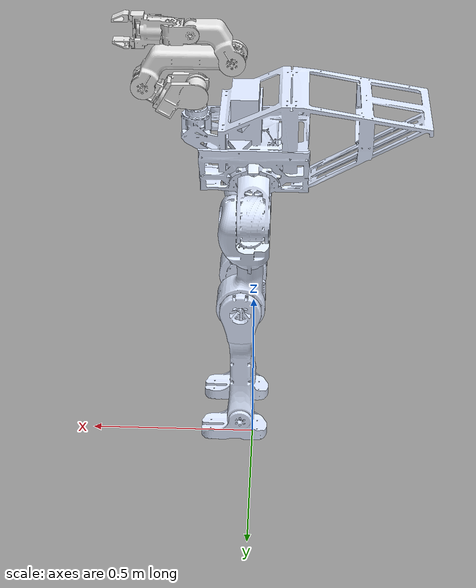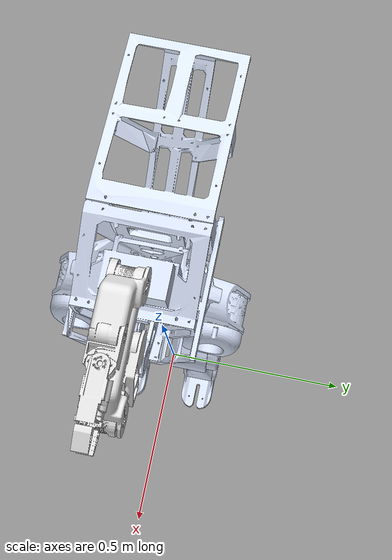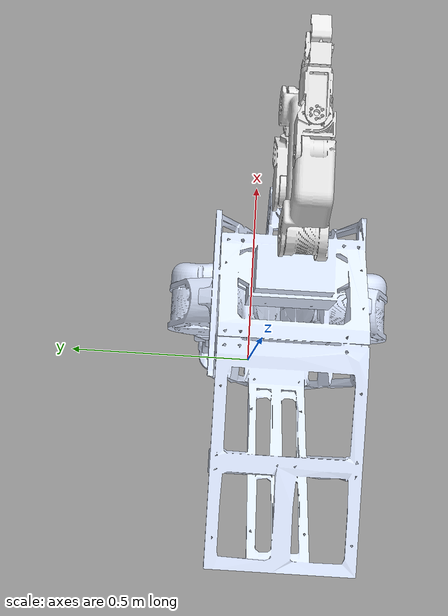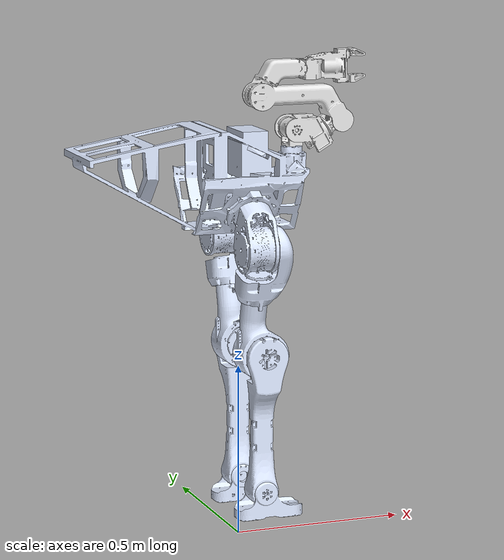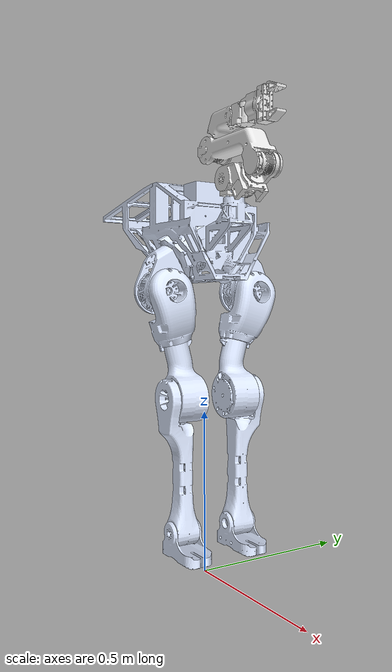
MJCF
<mujoco model="ostrich_0827">
  <compiler angle="radian" autolimits="true" meshdir="../meshes/"/>
  <default>
    <default class="EC_A10020">
      <joint armature="0.277" frictionloss="0.0"/>
    </default>
    <default class="EC_A6408">
      <joint armature="0.058" frictionloss="0.0"/>
    </default>
    <default class="EC_A4310">
      <joint armature="0.024" frictionloss="0.0"/>
    </default>

    <default class="ostrich">
      <default class="visual">
        <geom group="2" type="mesh" density="0" material="" contype="0" conaffinity="0"/>
      </default>
      <default class="collision">
        <geom group="3" rgba=".2 .6 .2 .3" type="capsule" contype="1" conaffinity="1"/>
        <default class="foot_capsule">
          <geom type="capsule" size="0.01"/>
        </default>
        <default class="foot_capsule2">
          <geom type="capsule" size="0.004"/>
        </default>
      </default>
      <site group="5" rgba="1 0 0 1"/>
    </default>

    <geom friction="0.8 0.005 0.0001" solref="0.02 1" solimp="0.9 0.95 0.001"/>
  </default>

  <asset>
    <mesh name="torso_link" content_type="model/stl" file="../meshes/torso_link.STL"/>
    <mesh name="left_hip_pitch_link" content_type="model/stl" file="../meshes/left_hip_pitch_link.STL"/>
    <mesh name="left_hip_roll_link" content_type="model/stl" file="../meshes/left_hip_roll_link.STL"/>
    <mesh name="left_hip_yaw_link" content_type="model/stl" file="../meshes/left_hip_yaw_link.STL"/>
    <mesh name="left_shank_link" content_type="model/stl" file="../meshes/left_knee_link.STL"/>
    <mesh name="left_foot_link" content_type="model/stl" file="../meshes/left_ankle_link.STL"/>
    <mesh name="right_hip_pitch_link" content_type="model/stl" file="../meshes/right_hip_pitch_link.STL"/>
    <mesh name="right_hip_roll_link" content_type="model/stl" file="../meshes/right_hip_roll_link.STL"/>
    <mesh name="right_hip_yaw_link" content_type="model/stl" file="../meshes/right_hip_yaw_link.STL"/>
    <mesh name="right_shank_link" content_type="model/stl" file="../meshes/right_knee_link.STL"/>
    <mesh name="right_foot_link" content_type="model/stl" file="../meshes/right_ankle_link.STL"/>
    <mesh name="arm_link1" content_type="model/stl" file="../meshes/arm_link1.STL"/>
    <mesh name="arm_link2" content_type="model/stl" file="../meshes/arm_link2.STL"/>
    <mesh name="arm_link3" content_type="model/stl" file="../meshes/arm_link3.STL"/>
    <mesh name="arm_link4" content_type="model/stl" file="../meshes/arm_link4.STL"/>
    <mesh name="arm_link5" content_type="model/stl" file="../meshes/arm_link5.STL"/>
    <mesh name="arm_link6" content_type="model/stl" file="../meshes/arm_link6.STL"/>
    <mesh name="arm_link7" content_type="model/stl" file="../meshes/arm_link7.STL"/>
    <mesh name="upper_finger_link" content_type="model/stl" file="../meshes/upper_finger_link.STL"/>
    <mesh name="lower_finger_link" content_type="model/stl" file="../meshes/lower_finger_link.STL"/>
  </asset>

  <worldbody>
    <body name="base_link" pos="0 0 0.9">
      <freejoint name="floating_base_joint"/>
      <inertial pos="-0.0257860181042253 -6.06936714271499E-07 0.129170005073898" quat="1 0 0 0" mass="16.65059053" diaginertia="0.19699283 0.34927910 0.33200461"/>
      <geom class="visual" rgba="0.866667 0.909804 1 1" mesh="torso_link"/>
      <geom name="base_link_collision" class="collision" size="0.12" fromto="-0.20 0.00 0.16 0.06 -0.00 0.11"/>
      <site name="imu" pos="0.12 0 0.017" size="0.01" rgba="0 0 1 0.5" group="5"/>
      <body name="left_hip_pitch_link" pos="0 0.102374 0.0534763">
        <inertial pos="-5.05697e-05 0.0438979 -0.076381" quat="0.997838 0.0655324 -0.00164915 0.00470507" mass="3.65427" diaginertia="0.00975217 0.00930567 0.00657315"/>
        <joint name="left_hip_pitch_joint" class="EC_A10020" pos="0 0 0" axis="0 0.866025 -0.5" range="-2.35619 2.35619" actuatorfrcrange="-330 330"/>
        <geom class="visual" rgba="0.866667 0.909804 1 1" mesh="left_hip_pitch_link"/>
        <geom name="left_hip_pitch_link_collision" class="collision" type="sphere" size="0.075" pos="0.018 0.045 -0.089"/>
        <body name="left_hip_roll_link" pos="0.035 0.0454471 -0.0862833">
          <inertial pos="-0.00392011 -0.0202131 -0.0751175" quat="0.964422 -0.125452 0.230304 -0.0333433" mass="2.17372" diaginertia="0.0104061 0.0099296 0.00395317"/>
          <joint name="left_hip_roll_joint" class="EC_A10020" pos="0 0 0" axis="1 0 0" range="-0.7854 1.91986" actuatorfrcrange="-330 330"/>
          <geom class="visual" rgba="0.866667 0.909804 1 1" mesh="left_hip_roll_link"/>
          <body name="left_hip_yaw_link" pos="-0.0255 -0.035717 -0.133298">
            <inertial pos="0.0213534 -0.0209931 -0.16454" quat="0.738884 -0.0979388 -0.0460602 0.665084" mass="4.1589" diaginertia="0.0172853 0.016093 0.00761774"/>
            <joint name="left_hip_yaw_joint" class="EC_A6408" pos="0 0 0" axis="0 0.258819 0.965926" range="-2.70526 2.70526" actuatorfrcrange="-70 70"/>
            <geom class="visual" rgba="0.866667 0.909804 1 1" mesh="left_hip_yaw_link"/>
            <geom name="left_hip_yaw_link_collision" class="collision" type="sphere" size="0.07" pos="0.025 -0.01 -0.182"/>
            <geom name="left_hip_yaw_link_collision2" class="collision" size="0.04" fromto="0 0.01 0.01 0 -0.01 -0.05"/>
            <body name="left_shank_link" pos="0.025 0.0129702 -0.182216">
              <inertial pos="0.000486262 -0.0126681 -0.215834" quat="0.73259 -0.0447494 0.0314725 0.678469" mass="2.15365" diaginertia="0.053792 0.0534286 0.00213295"/>
              <joint name="left_knee_joint" class="EC_A10020" pos="0 0 0" axis="0 1 0" range="-2.72271 1.5708" actuatorfrcrange="-330 330"/>
              <geom class="visual" rgba="0.866667 0.909804 1 1" mesh="left_shank_link"/>
              <geom name="left_shin_collision" class="collision" size="0.025" fromto="0 -0.025 -0.12 0 -0.025 -0.32"/>
              <body name="left_foot_link" pos="0 0.00475 -0.4">
                <site name="end_effector_left" size="0.02" pos="0.055 -0.012 -0.077" group="5"/>
                <site name="left_foot_site" pos="0.12 0 -0.077" size="0.025" group="5"/>
                <inertial pos="0.0146478 -0.0311319 -0.0462059" quat="0.00148189 0.722069 -0.0834945 0.686762" mass="1.0068" diaginertia="0.00331627 0.00304342 0.00147164"/>
                <joint name="left_ankle_joint" class="EC_A4310" pos="0 0 0" axis="0 1 0" range="-1.69297 1.74533" actuatorfrcrange="-36 36"/>
                <geom class="visual" rgba="0.866667 0.909804 1 1" mesh="left_foot_link"/>
                <geom name="left_ankle_link_collision" class="collision" type="sphere" size="0.05" pos="0 -0.03 0"/>

                <geom name="left_foot11_collision" class="foot_capsule" fromto="0.05 -0.00 -0.065 0.096 -0.00 -0.065"/>
                <geom name="left_foot12_collision" class="foot_capsule" fromto="0.05 -0.01 -0.070 0.106 -0.01 -0.07"/>
                <geom name="left_foot13_collision" class="foot_capsule" fromto="0.05 -0.02 -0.070 0.108 -0.02 -0.07"/>
                <geom name="left_foot14_collision" class="foot_capsule" fromto="0.05 -0.064 -0.065 0.096 -0.064 -0.065"/>
                <geom name="left_foot15_collision" class="foot_capsule" fromto="0.05 -0.054 -0.070 0.106 -0.054 -0.07"/>
                <geom name="left_foot16_collision" class="foot_capsule" fromto="0.05 -0.044 -0.070 0.108 -0.044 -0.07"/>

                <geom name="left_foot21_collision" class="foot_capsule" fromto="-0.025 -0.00 -0.065 -0.058 -0.00 -0.065"/>
                <geom name="left_foot22_collision" class="foot_capsule" fromto="-0.025 -0.01 -0.070 -0.066 -0.01 -0.07"/>
                <geom name="left_foot23_collision" class="foot_capsule" fromto="-0.025 -0.02 -0.070 -0.068 -0.02 -0.07"/>
                <geom name="left_foot24_collision" class="foot_capsule" fromto="-0.025 -0.064 -0.065 -0.058 -0.064 -0.065"/>
                <geom name="left_foot25_collision" class="foot_capsule" fromto="-0.025 -0.054 -0.070 -0.066 -0.054 -0.07"/>
                <geom name="left_foot26_collision" class="foot_capsule" fromto="-0.025 -0.044 -0.070 -0.068 -0.044 -0.07"/>
                <geom name="left_foot27_collision" class="foot_capsule" fromto="-0.025 -0.034 -0.070 -0.070 -0.034 -0.07"/>

                <geom name="left_foot31_collision" class="foot_capsule" fromto="0.00 0.00 -0.059 0.00 -0.064 -0.059"/>
                <geom name="left_foot32_collision" class="foot_capsule" fromto="0.01 0.00 -0.059 0.01 -0.064 -0.059"/>
                <geom name="left_foot33_collision" class="foot_capsule" fromto="0.02 0.00 -0.059 0.02 -0.064 -0.059"/>
              </body>
            </body>
          </body>
        </body>
      </body>
      <body name="right_hip_pitch_link" pos="0 -0.102374 0.0534763">
        <inertial pos="-5.04246e-05 -0.0438979 -0.076381" quat="0.997838 -0.0655329 -0.00164205 -0.00468877" mass="3.65427" diaginertia="0.00975215 0.00930567 0.00657317"/>
        <joint name="right_hip_pitch_joint" class="EC_A10020" pos="0 0 0" axis="0 0.866027 0.499998" range="-2.35619 2.35619" actuatorfrcrange="-330 330"/>
        <geom class="visual" rgba="0.866667 0.909804 1 1" mesh="right_hip_pitch_link"/>
        <geom name="right_hip_pitch_link_collision" class="collision" type="sphere" size="0.075" pos="0.018 -0.045 -0.089"/>
        <body name="right_hip_roll_link" pos="0.035 -0.0454471 -0.0862833">
          <inertial pos="-0.00392071 0.0202136 -0.0751182" quat="0.964422 0.125452 0.230304 0.0333433" mass="2.17381" diaginertia="0.0104061 0.0099296 0.00395317"/>
          <joint name="right_hip_roll_joint" class="EC_A10020" pos="0 0 0" axis="1 0 0" range="-1.91986 0.7854" actuatorfrcrange="-330 330"/>
          <geom class="visual" rgba="0.866667 0.909804 1 1" mesh="right_hip_roll_link"/>
          <body name="right_hip_yaw_link" pos="-0.0255 0.035717 -0.133298">
            <inertial pos="0.0213534 0.0209929 -0.16454" quat="0.665084 -0.0460602 -0.0979388 0.738884" mass="4.15891" diaginertia="0.0172853 0.016093 0.00761774"/>
            <joint name="right_hip_yaw_joint" class="EC_A6408" pos="0 0 0" axis="0 -0.258819 0.965926" range="-2.70526 2.70526" actuatorfrcrange="-70 70"/>
            <geom class="visual" rgba="0.866667 0.909804 1 1" mesh="right_hip_yaw_link"/>
            <geom name="right_hip_yaw_link_collision" class="collision" type="sphere" size="0.07" pos="0.025 0.01 -0.182"/>
            <geom name="right_hip_yaw_link_collision2" class="collision" size="0.04" fromto="0 -0.01 0.01 0 0.01 -0.05"/>
            <body name="right_shank_link" pos="0.025 -0.0129702 -0.182216">
              <inertial pos="0.000496864 0.011906 -0.212918" quat="0.678469 0.0314725 -0.0447494 0.73259" mass="2.12007" diaginertia="0.053792 0.0534286 0.00213295"/>
              <joint name="right_knee_joint" class="EC_A10020" pos="0 0 0" axis="0 1 0" range="-2.72271 1.5708" actuatorfrcrange="-330 330"/>
              <geom class="visual" rgba="0.866667 0.909804 1 1" mesh="right_shank_link"/>
              <geom name="right_shin_collision" class="collision" size="0.025" fromto="0 0.025 -0.12 0 0.025 -0.32"/>
              <body name="right_foot_link" pos="0 -0.00475 -0.4">
                <site name="end_effector_right" size="0.02" rgba="0 1 0 1" pos="0.055 0.012 -0.077" group="5"/>
                <site name="right_foot_site" pos="0.12 0 -0.077" size="0.025" group="5"/>
                <inertial pos="0.0146478 0.0311319 -0.0462059" quat="-0.00148189 0.722069 0.0834945 0.686762" mass="1.0068" diaginertia="0.00331627 0.00304342 0.00147164"/>
                <joint name="right_ankle_joint" class="EC_A4310" pos="0 0 0" axis="0 1 0" range="-1.74533 1.69297" actuatorfrcrange="-36 36"/>
                <geom class="visual" rgba="0.866667 0.909804 1 1" mesh="right_foot_link"/>
                <geom name="right_ankle_link_collision" class="collision" type="sphere" size="0.05" pos="0 0.03 0"/>

                <geom name="right_foot11_collision" class="foot_capsule" fromto="0.05 0.00 -0.065 0.096 0.00 -0.065"/>
                <geom name="right_foot12_collision" class="foot_capsule" fromto="0.05 0.01 -0.070 0.106 0.01 -0.07"/>
                <geom name="right_foot13_collision" class="foot_capsule" fromto="0.05 0.02 -0.070 0.108 0.02 -0.07"/>
                <geom name="right_foot14_collision" class="foot_capsule" fromto="0.05 0.064 -0.065 0.096 0.064 -0.065"/>
                <geom name="right_foot15_collision" class="foot_capsule" fromto="0.05 0.054 -0.070 0.106 0.054 -0.07"/>
                <geom name="right_foot16_collision" class="foot_capsule" fromto="0.05 0.044 -0.070 0.108 0.044 -0.07"/>

                <geom name="right_foot21_collision" class="foot_capsule" fromto="-0.025 0.00 -0.065 -0.058 0.00 -0.065"/>
                <geom name="right_foot22_collision" class="foot_capsule" fromto="-0.025 0.01 -0.070 -0.066 0.01 -0.07"/>
                <geom name="right_foot23_collision" class="foot_capsule" fromto="-0.025 0.02 -0.070 -0.068 0.02 -0.07"/>
                <geom name="right_foot24_collision" class="foot_capsule" fromto="-0.025 0.064 -0.065 -0.058 0.064 -0.065"/>
                <geom name="right_foot25_collision" class="foot_capsule" fromto="-0.025 0.054 -0.070 -0.066 0.054 -0.07"/>
                <geom name="right_foot26_collision" class="foot_capsule" fromto="-0.025 0.044 -0.070 -0.068 0.044 -0.07"/>
                <geom name="right_foot27_collision" class="foot_capsule" fromto="-0.025 0.034 -0.070 -0.070 0.034 -0.07"/>

                <geom name="right_foot31_collision" class="foot_capsule" fromto="0.00 -0.00 -0.059 0.00 0.064 -0.059"/>
                <geom name="right_foot32_collision" class="foot_capsule" fromto="0.01 -0.00 -0.059 0.01 0.064 -0.059"/>
                <geom name="right_foot33_collision" class="foot_capsule" fromto="0.02 -0.00 -0.059 0.02 0.064 -0.059"/>
              </body>
            </body>
          </body>
        </body>
      </body>
      <!-- 手臂已焊死（fixed）：arm_joint1~7 与 upper_finger_joint 的关节定义已删除。
           MuJoCo 中 body 不带 joint 即与父 body 刚性焊接，所以手臂没有任何自由度、也不需要执行器，
           自然不参与观测/动作。若要恢复可动手臂，请从同目录的 ostrich.urdf 重新生成本文件。 -->
      <body name="arm_link1" pos="0.162 0 0.232">
        <inertial pos="-0.000577024 -0.00567401 0.0314714" quat="0.955478 0.294942 -0.00263867 -0.00801985" mass="0.1838" diaginertia="0.000260151 0.000200709 0.00015592"/>
        <geom class="visual" rgba="0.894118 0.894118 0.894118 1" mesh="arm_link1"/>
        <body name="arm_link2" pos="0 -0.0365 0.047">
          <inertial pos="0.0569986 0.036427 -0.00979827" quat="-0.00239547 0.820723 -0.000601403 0.57132" mass="0.420418" diaginertia="0.0010327 0.0008396 0.000622607"/>
          <geom class="visual" rgba="0.894118 0.894118 0.894118 1" mesh="arm_link2"/>
          <body name="arm_link3" pos="0.097366 0.0365 -0.0027391">
            <inertial pos="0.0311452 0.00388688 0.0179262" quat="-0.0395188 0.495212 0.0803633 0.864144" mass="0.198618" diaginertia="0.000226914 0.000202239 0.000140027"/>
            <geom class="visual" rgba="0.894118 0.894118 0.894118 1" mesh="arm_link3"/>
            <body name="arm_link4" pos="0.043301 0.031 0.025">
              <inertial pos="-0.115795 -0.0232243 0.0619794" quat="0.360212 0.615721 0.445018 0.541382" mass="0.693314" diaginertia="0.00963348 0.00951514 0.000835864"/>
              <geom class="visual" rgba="0.894118 0.894118 0.894118 1" mesh="arm_link4"/>
              <body name="arm_link5" pos="-0.24 -0.0022 0.075">
                <inertial pos="0.056236 -0.0249005 0.0595458" quat="0.456424 0.503905 0.196305 0.706556" mass="0.186744" diaginertia="0.000815233 0.000754618 0.000226228"/>
                <geom class="visual" rgba="0.894118 0.894118 0.894118 1" mesh="arm_link5"/>
                <body name="arm_link6" pos="0.11 -0.013 0.075">
                  <inertial pos="0.0414503 -0.0141182 -0.00229564" quat="0.726737 0.420981 0.521466 0.150672" mass="0.0976625" diaginertia="0.000130897 0.000125273 9.79096e-05"/>
                  <geom class="visual" rgba="0.894118 0.894118 0.894118 1" mesh="arm_link6"/>
                  <body name="arm_link7" pos="0.055 -0.0158 0.019">
                    <inertial pos="0.0719752 7.7875e-08 -0.0154891" quat="0.701563 -0.0985221 -0.111832 0.696848" mass="0.227141" diaginertia="0.000334501 0.000252739 0.0001929"/>
                    <geom class="visual" rgba="0.894118 0.894118 0.894118 1" mesh="arm_link7"/>
                    <body name="upper_finger_link" pos="0.0867 0 -0.016998">
                      <inertial pos="0.0353083 -0.000551163 0.0355954" quat="0.0193837 0.623571 0.0502783 0.779908" mass="0.0465067" diaginertia="1.03259e-05 8.92618e-06 4.87352e-06"/>
                      <geom class="visual" rgba="0.894118 0.894118 0.894118 1" mesh="upper_finger_link"/>
                    </body>
                    <body name="lower_finger_link" pos="0.0867 0 -0.016998">
                      <inertial pos="0.0353083 0.000550337 -0.0356003" quat="0.0502722 0.779908 0.0193842 0.623571" mass="0.0465067" diaginertia="1.03259e-05 8.92618e-06 4.87352e-06"/>
                      <geom class="visual" rgba="0.894118 0.894118 0.894118 1" mesh="lower_finger_link"/>
                    </body>
                  </body>
                </body>
              </body>
            </body>
          </body>
        </body>
      </body>
    </body>
  </worldbody>

  <contact>
    <exclude body1="left_hip_pitch_link" body2="left_hip_yaw_link"/>
    <exclude body1="right_hip_pitch_link" body2="right_hip_yaw_link"/>
  </contact>

  <sensor>
    <jointpos name="left_hip_pitch_pos" joint="left_hip_pitch_joint"/>
    <jointpos name="left_hip_roll_pos" joint="left_hip_roll_joint"/>
    <jointpos name="left_hip_yaw_pos" joint="left_hip_yaw_joint"/>
    <jointpos name="left_knee_pos" joint="left_knee_joint"/>
    <jointpos name="left_ankle_pos" joint="left_ankle_joint"/>
    <jointpos name="right_hip_pitch_pos" joint="right_hip_pitch_joint"/>
    <jointpos name="right_hip_roll_pos" joint="right_hip_roll_joint"/>
    <jointpos name="right_hip_yaw_pos" joint="right_hip_yaw_joint"/>
    <jointpos name="right_knee_pos" joint="right_knee_joint"/>
    <jointpos name="right_ankle_pos" joint="right_ankle_joint"/>

    <jointvel name="left_hip_pitch_vel" joint="left_hip_pitch_joint"/>
    <jointvel name="left_hip_roll_vel" joint="left_hip_roll_joint"/>
    <jointvel name="left_hip_yaw_vel" joint="left_hip_yaw_joint"/>
    <jointvel name="left_knee_vel" joint="left_knee_joint"/>
    <jointvel name="left_ankle_vel" joint="left_ankle_joint"/>
    <jointvel name="right_hip_pitch_vel" joint="right_hip_pitch_joint"/>
    <jointvel name="right_hip_roll_vel" joint="right_hip_roll_joint"/>
    <jointvel name="right_hip_yaw_vel" joint="right_hip_yaw_joint"/>
    <jointvel name="right_knee_vel" joint="right_knee_joint"/>
    <jointvel name="right_ankle_vel" joint="right_ankle_joint"/>

    <gyro name="imu_ang_vel" site="imu" noise="0.005" cutoff="198"/>
    <velocimeter name="imu_lin_vel" site="imu"/>
    <accelerometer name="imu_lin_acc" site="imu" noise="0.005" cutoff="198"/>
    <framequat name="imu_quat" objtype="site" noise="0.001" objname="imu"/>
    <subtreeangmom name="root_angmom" body="base_link"/>
  </sensor>

  <actuator>
    <motor name="left_hip_pitch_act" joint="left_hip_pitch_joint" gear="1.00" ctrlrange="-330 330" ctrllimited="true" forcelimited="true" forcerange="-330 330"/>
    <motor name="left_hip_roll_act" joint="left_hip_roll_joint" gear="1.00" ctrlrange="-330 330" ctrllimited="true" forcelimited="true" forcerange="-330 330"/>
    <motor name="left_hip_yaw_act" joint="left_hip_yaw_joint" gear="1.00" ctrlrange="-70 70" ctrllimited="true" forcelimited="true" forcerange="-70 70"/>
    <motor name="left_knee_act" joint="left_knee_joint" gear="1.00" ctrlrange="-330 330" ctrllimited="true" forcelimited="true" forcerange="-330 330"/>
    <motor name="left_ankle_act" joint="left_ankle_joint" gear="1.00" ctrlrange="-36 36" ctrllimited="true" forcelimited="true" forcerange="-36 36"/>
    <motor name="right_hip_pitch_act" joint="right_hip_pitch_joint" gear="1.00" ctrlrange="-330 330" ctrllimited="true" forcelimited="true" forcerange="-330 330"/>
    <motor name="right_hip_roll_act" joint="right_hip_roll_joint" gear="1.00" ctrlrange="-330 330" ctrllimited="true" forcelimited="true" forcerange="-330 330"/>
    <motor name="right_hip_yaw_act" joint="right_hip_yaw_joint" gear="1.00" ctrlrange="-70 70" ctrllimited="true" forcelimited="true" forcerange="-70 70"/>
    <motor name="right_knee_act" joint="right_knee_joint" gear="1.00" ctrlrange="-330 330" ctrllimited="true" forcelimited="true" forcerange="-330 330"/>
    <motor name="right_ankle_act" joint="right_ankle_joint" gear="1.00" ctrlrange="-36 36" ctrllimited="true" forcelimited="true" forcerange="-36 36"/>

  </actuator>
</mujoco>
